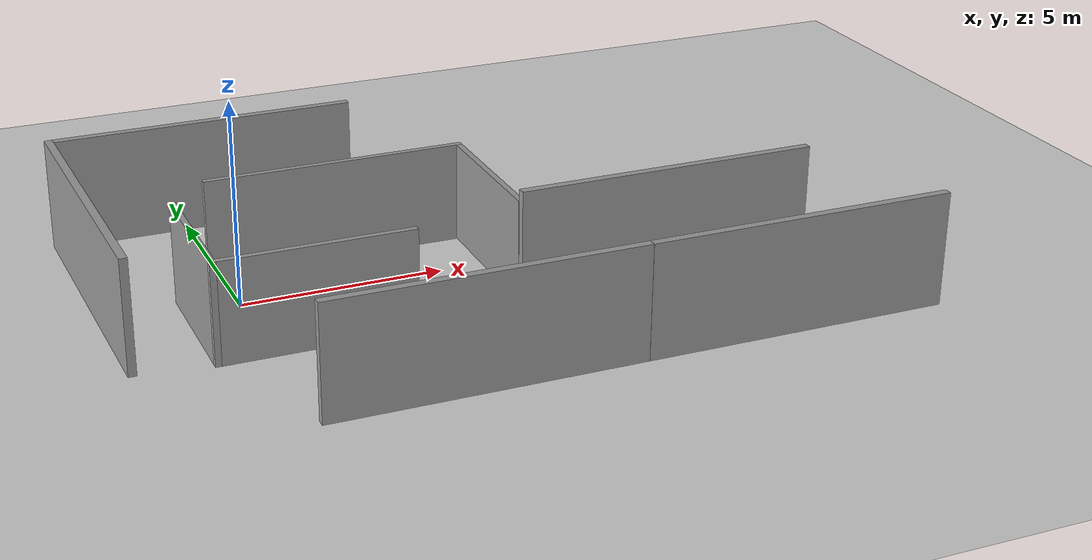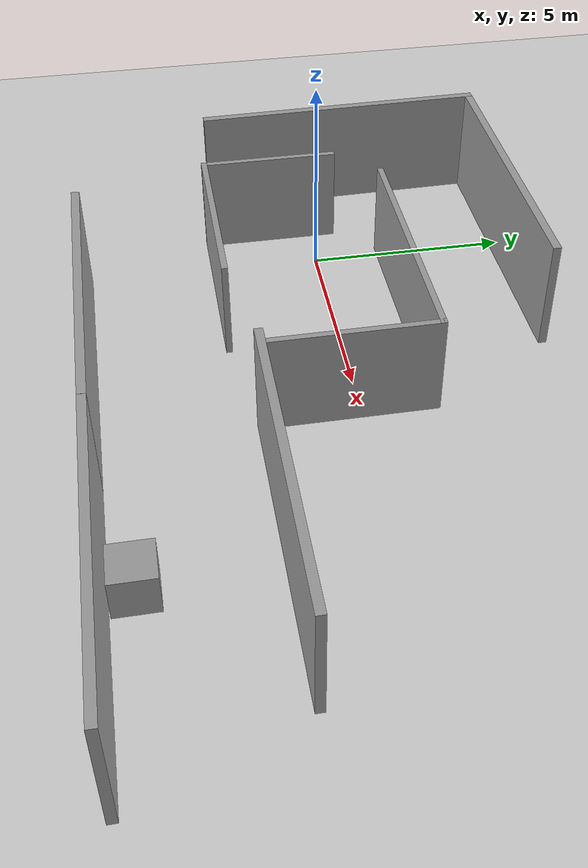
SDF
<sdf version="1.7">
 <world name="default">
  <light name="sun" type="directional">
   <pose>0 0 10 0 -0 0</pose>
   <diffuse>0.8 0.8 0.8 1</diffuse>
   <specular>0.2 0.2 0.2 1</specular>
   <attenuation>
    <range>1000</range>
    <constant>0.9</constant>
    <linear>0.01</linear>
    <quadratic>0.001</quadratic>
   </attenuation>
   <direction>-0.5 0.1 -0.9</direction>
   <spot><inner_angle>0</inner_angle><outer_angle>0</outer_angle><falloff>0</falloff></spot>
  </light>
  <model name="ground_plane">
   <static>1</static>
   <link name="link">
    <collision name="collision">
     <geometry><plane><normal>0 0 1</normal><size>100 100</size></plane></geometry>
     <surface><friction><ode><mu>100</mu><mu2>50</mu2></ode></friction></surface>
    </collision>
    <visual name="visual">
     <cast_shadows>0</cast_shadows>
     <geometry><plane><normal>0 0 1</normal><size>100 100</size></plane></geometry>
     <material>
      <script><uri>file://media/materials/scripts/gazebo.material</uri><name>Gazebo/Grey</name></script>
     </material>
    </visual>
   </link>
  </model>
  <gravity>0 0 -9.8</gravity>
  <magnetic_field>6e-06 2.3e-05 -4.2e-05</magnetic_field>
  <atmosphere type="adiabatic"/>
  <physics type="ode">
   <max_step_size>0.001</max_step_size>
   <real_time_factor>1</real_time_factor>
   <real_time_update_rate>1000</real_time_update_rate>
  </physics>
  <scene><ambient>0.4 0.4 0.4 1</ambient><background>0.7 0.7 0.7 1</background><shadows>1</shadows></scene>
  <audio><device>default</device></audio>
  <spherical_coordinates>
   <surface_model>EARTH_WGS84</surface_model>
   <latitude_deg>0</latitude_deg>
   <longitude_deg>0</longitude_deg>
   <elevation>0</elevation>
   <heading_deg>0</heading_deg>
  </spherical_coordinates>
  <model name="Model1">
   <pose>2.43155 -0.496159 0 0 -0 0</pose>
   <link name="Wall_0">
    <collision name="Wall_0_Collision">
     <geometry><box><size>4.75 0.15 2.5</size></box></geometry>
     <pose>0 0 1.25 0 -0 0</pose>
    </collision>
    <visual name="Wall_0_Visual">
     <pose>0 0 1.25 0 -0 0</pose>
     <geometry><box><size>4.75 0.15 2.5</size></box></geometry>
     <material>
      <script><uri>file://media/materials/scripts/gazebo.material</uri><name>Gazebo/Grey</name></script>
      <ambient>1 1 1 1</ambient>
     </material>
     <meta><layer>0</layer></meta>
    </visual>
    <pose>-1.40207 -2.22592 0 0 -0 3.14159</pose>
   </link>
   <link name="Wall_1">
    <collision name="Wall_1_Collision">
     <geometry><box><size>3.5 0.15 2.5</size></box></geometry>
     <pose>0 0 1.25 0 -0 0</pose>
    </collision>
    <visual name="Wall_1_Visual">
     <pose>0 0 1.25 0 -0 0</pose>
     <geometry><box><size>3.5 0.15 2.5</size></box></geometry>
     <material>
      <script><uri>file://media/materials/scripts/gazebo.material</uri><name>Gazebo/Grey</name></script>
      <ambient>1 1 1 1</ambient>
     </material>
     <meta><layer>0</layer></meta>
    </visual>
    <pose>-3.70207 -0.550924 0 0 -0 1.5708</pose>
   </link>
   <link name="Wall_3">
    <collision name="Wall_3_Collision">
     <geometry><box><size>6.5 0.15 2.5</size></box></geometry>
     <pose>0 0 1.25 0 -0 0</pose>
    </collision>
    <visual name="Wall_3_Visual">
     <pose>0 0 1.25 0 -0 0</pose>
     <geometry><box><size>6.5 0.15 2.5</size></box></geometry>
     <material>
      <script><uri>file://media/materials/scripts/gazebo.material</uri><name>Gazebo/Grey</name></script>
      <ambient>1 1 1 1</ambient>
     </material>
     <meta><layer>0</layer></meta>
    </visual>
    <pose>0.527075 2.22592 0 0 -0 0</pose>
   </link>
   <link name="Wall_4">
    <collision name="Wall_4_Collision">
     <geometry><box><size>4 0.15 2.5</size></box></geometry>
     <pose>0 0 1.25 0 -0 0</pose>
    </collision>
    <visual name="Wall_4_Visual">
     <pose>0 0 1.25 0 -0 0</pose>
     <geometry><box><size>4 0.15 2.5</size></box></geometry>
     <material>
      <script><uri>file://media/materials/scripts/gazebo.material</uri><name>Gazebo/Grey</name></script>
      <ambient>1 1 1 1</ambient>
     </material>
     <meta><layer>0</layer></meta>
    </visual>
    <pose>3.70207 0.300924 0 0 -0 -1.5708</pose>
   </link>
   <static>1</static>
  </model>
  <model name="grey_wall">
   <static>1</static>
   <link name="link">
    <pose>0 0 1.4 0 -0 0</pose>
    <collision name="collision"><geometry><box><size>7.5 0.2 2.8</size></box></geometry></collision>
    <visual name="visual">
     <cast_shadows>0</cast_shadows>
     <geometry><box><size>7.5 0.2 2.8</size></box></geometry>
     <material>
      <script>
       <uri>model://grey_wall/materials/scripts</uri>
       <uri>model://grey_wall/materials/textures</uri>
       <name>vrc/grey_wall</name>
      </script>
     </material>
    </visual>
   </link>
   <pose>9.81982 -2.30182 0 0 -0 0</pose>
  </model>
  <model name="grey_wall_0">
   <static>1</static>
   <link name="link">
    <pose>0 0 1.4 0 -0 0</pose>
    <collision name="collision"><geometry><box><size>7.5 0.2 2.8</size></box></geometry></collision>
    <visual name="visual">
     <cast_shadows>0</cast_shadows>
     <geometry><box><size>7.5 0.2 2.8</size></box></geometry>
     <material>
      <script>
       <uri>model://grey_wall/materials/scripts</uri>
       <uri>model://grey_wall/materials/textures</uri>
       <name>vrc/grey_wall</name>
      </script>
     </material>
    </visual>
   </link>
   <pose>3.75806 -6.00809 0 0 -0 0</pose>
  </model>
  <model name="grey_wall_0_clone">
   <static>1</static>
   <link name="link">
    <pose>0 0 1.4 0 -0 0</pose>
    <collision name="collision"><geometry><box><size>7.5 0.2 2.8</size></box></geometry></collision>
    <visual name="visual">
     <cast_shadows>0</cast_shadows>
     <geometry><box><size>7.5 0.2 2.8</size></box></geometry>
     <material>
      <script>
       <uri>model://grey_wall/materials/scripts</uri>
       <uri>model://grey_wall/materials/textures</uri>
       <name>vrc/grey_wall</name>
      </script>
     </material>
    </visual>
   </link>
   <pose>11.2618 -6.0085 0 0 -0 0</pose>
  </model>
  <model name="grey_wall_clone">
   <static>1</static>
   <link name="link">
    <pose>0 0 1.4 0 -0 0</pose>
    <collision name="collision"><geometry><box><size>7.5 0.2 2.8</size></box></geometry></collision>
    <visual name="visual">
     <cast_shadows>0</cast_shadows>
     <geometry><box><size>7.5 0.2 2.8</size></box></geometry>
     <material>
      <script>
       <uri>model://grey_wall/materials/scripts</uri>
       <uri>model://grey_wall/materials/textures</uri>
       <name>vrc/grey_wall</name>
      </script>
     </material>
    </visual>
   </link>
   <pose>0.59211 4.86921 0 0 -0 0</pose>
  </model>
  <model name="grey_wall_clone_clone">
   <static>1</static>
   <link name="link">
    <pose>0 0 1.4 0 -0 0</pose>
    <collision name="collision"><geometry><box><size>7.5 0.2 2.8</size></box></geometry></collision>
    <visual name="visual">
     <cast_shadows>0</cast_shadows>
     <geometry><box><size>7.5 0.2 2.8</size></box></geometry>
     <material>
      <script>
       <uri>model://grey_wall/materials/scripts</uri>
       <uri>model://grey_wall/materials/textures</uri>
       <name>vrc/grey_wall</name>
      </script>
     </material>
    </visual>
   </link>
   <pose>-3.18024 1.21367 0 0 -0 1.59024</pose>
  </model>
  <model name="unit_box">
   <pose>10.3806 -5.37291 0.499995 -1e-05 -0 -0</pose>
   <link name="link">
    <inertial>
     <mass>1</mass>
     <inertia>
      <ixx>0.166667</ixx>
      <ixy>0</ixy>
      <ixz>0</ixz>
      <iyy>0.166667</iyy>
      <iyz>0</iyz>
      <izz>0.166667</izz>
     </inertia>
    </inertial>
    <collision name="collision"><geometry><box><size>1 1 1</size></box></geometry></collision>
    <visual name="visual">
     <geometry><box><size>1 1 1</size></box></geometry>
     <material>
      <script><name>Gazebo/Grey</name><uri>file://media/materials/scripts/gazebo.material</uri></script>
     </material>
    </visual>
   </link>
  </model>
 </world>
</sdf>
